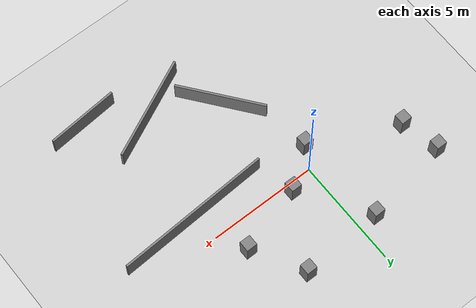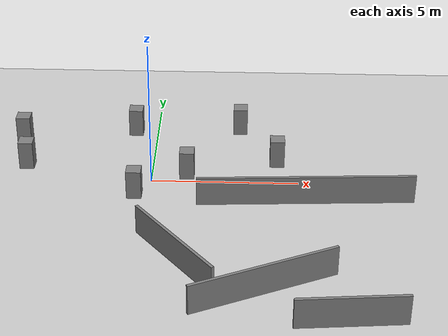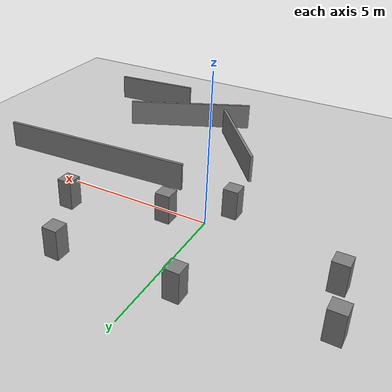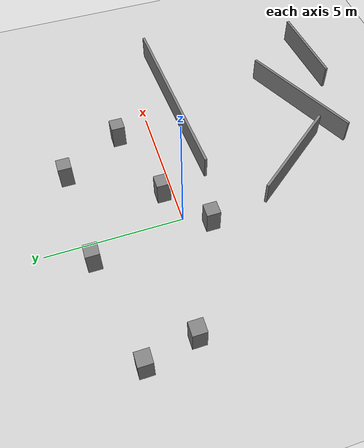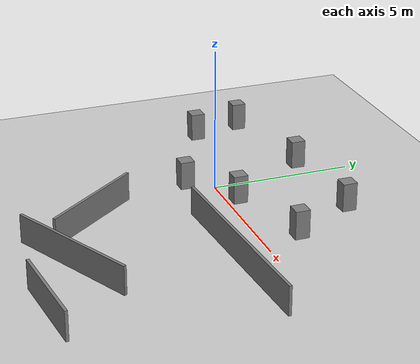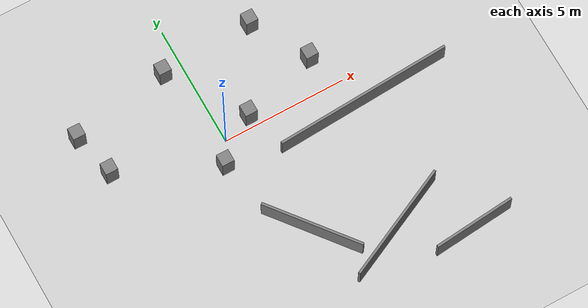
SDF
<?xml version='1.0' encoding='utf-8'?>
<sdf version="1.9">
  <world name="fdgdff">
    <physics name="1ms" type="dart">
      <max_step_size>0.001</max_step_size>
      <real_time_factor>1</real_time_factor>
      <real_time_update_rate>1000</real_time_update_rate>
    </physics>
    <plugin name="gz::sim::systems::Physics" filename="gz-sim-physics-system" />
    <plugin name="gz::sim::systems::UserCommands" filename="gz-sim-user-commands-system" />
    <plugin name="gz::sim::systems::SceneBroadcaster" filename="gz-sim-scene-broadcaster-system" />
    <plugin name="gz::sim::systems::Contact" filename="gz-sim-contact-system" />
    <plugin name="gz::sim::systems::Sensors" filename="gz-sim-sensors-system">
      <render_engine>ogre2</render_engine>
    </plugin>
    <gravity>0 0 -9.8</gravity>
    <magnetic_field>6e-06 2.3e-05 -4.2e-05</magnetic_field>
    <atmosphere type="adiabatic" />
    <scene>
      <ambient>0.4 0.4 0.4 1</ambient>
      <background>0.7 0.7 0.7 1</background>
      <shadows>true</shadows>
    </scene>
    <model name="ground_plane">
      <static>true</static>
      <link name="link">
        <collision name="collision">
          <geometry>
            <plane>
              <normal>0 0 1</normal>
              <size>100 100</size>
            </plane>
          </geometry>
          <surface>
            <friction>
              <ode />
            </friction>
            <bounce />
            <contact />
          </surface>
        </collision>
        <visual name="visual">
          <geometry>
            <plane>
              <normal>0 0 1</normal>
              <size>100 100</size>
            </plane>
          </geometry>
          <material>
            <ambient>0.8 0.8 0.8 1</ambient>
            <diffuse>0.8 0.8 0.8 1</diffuse>
            <specular>0.8 0.8 0.8 1</specular>
          </material>
        </visual>
        <pose>0 0 0 0 -0 0</pose>
        <inertial>
          <pose>0 0 0 0 -0 0</pose>
          <mass>1</mass>
          <inertia>
            <ixx>1</ixx>
            <ixy>0</ixy>
            <ixz>0</ixz>
            <iyy>1</iyy>
            <iyz>0</iyz>
            <izz>1</izz>
          </inertia>
        </inertial>
        <enable_wind>false</enable_wind>
      </link>
      <pose>0 0 0 0 -0 0</pose>
      <self_collide>false</self_collide>
    </model>
    <light name="sun" type="directional">
      <pose>0 0 10 0 -0 0</pose>
      <cast_shadows>true</cast_shadows>
      <intensity>1</intensity>
      <direction>-0.5 0.1 -0.9</direction>
      <diffuse>0.8 0.8 0.8 1</diffuse>
      <specular>0.2 0.2 0.2 1</specular>
      <attenuation>
        <range>1000</range>
        <linear>0.01</linear>
        <constant>0.90000000000000002</constant>
        <quadratic>0.001</quadratic>
      </attenuation>
      <spot>
        <inner_angle>0</inner_angle>
        <outer_angle>0</outer_angle>
        <falloff>0</falloff>
      </spot>
    </light>
  <model name="wall_1">
            <static>true</static>
            <type>wall</type>
            <pose>5.200000 -1.200000 0.500000 0 0 0.055499</pose>
            <link name="link">
                <collision name="collision">
                    <geometry><box><size>7.211103 0.100000 1.000000</size></box></geometry>
                </collision>
                <visual name="visual">
                    <geometry><box><size>7.211103 0.100000 1.000000</size></box></geometry>
                    <material>
                        <diffuse>0.5 0.5 0.5 1</diffuse>
                    </material>
                </visual></link></model><model name="wall_2">
            <static>true</static>
            <type>wall</type>
            <pose>3.800000 -6.150000 0.500000 0 0 -2.696292</pose>
            <link name="link">
                <collision name="collision">
                    <geometry><box><size>4.875449 0.100000 1.000000</size></box></geometry>
                </collision>
                <visual name="visual">
                    <geometry><box><size>4.875449 0.100000 1.000000</size></box></geometry>
                    <material>
                        <diffuse>0.5 0.5 0.5 1</diffuse>
                    </material>
                </visual></link></model><model name="wall_3">
            <static>true</static>
            <type>wall</type>
            <pose>1.050000 -4.700000 0.500000 0 0 2.233999</pose>
            <link name="link">
                <collision name="collision">
                    <geometry><box><size>4.060788 0.100000 1.000000</size></box></geometry>
                </collision>
                <visual name="visual">
                    <geometry><box><size>4.060788 0.100000 1.000000</size></box></geometry>
                    <material>
                        <diffuse>0.5 0.5 0.5 1</diffuse>
                    </material>
                </visual></link></model><model name="wall_4">
            <static>true</static>
            <type>wall</type>
            <pose>6.250000 -7.550000 0.500000 0 0 -3.050933</pose>
            <link name="link">
                <collision name="collision">
                    <geometry><box><size>3.313608 0.100000 1.000000</size></box></geometry>
                </collision>
                <visual name="visual">
                    <geometry><box><size>3.313608 0.100000 1.000000</size></box></geometry>
                    <material>
                        <diffuse>0.5 0.5 0.5 1</diffuse>
                    </material>
                </visual></link></model><model name="box_3">
            <static>true</static>
            <type>box</type>
            <pose>4.300000 1.300000 0.500000 0 0 0</pose>
            <link name="link">
                <collision name="collision">
                    <geometry><box><size>0.500000 0.500000 1.000000</size></box></geometry>
                </collision>
                <visual name="visual">
                    <geometry><box><size>0.500000 0.500000 1.000000</size></box></geometry>
                    <material>
                        <diffuse>0.5 0.5 0.5 1</diffuse>
                    </material>
                </visual></link></model><model name="box_1">
            <static>true</static>
            <type>box</type>
            <pose>-4.800000 2.700000 0.500000 0 0 0</pose>
            <link name="link">
                <collision name="collision">
                    <geometry><box><size>0.500000 0.500000 1.000000</size></box></geometry>
                </collision>
                <visual name="visual">
                    <geometry><box><size>0.500000 0.500000 1.000000</size></box></geometry>
                    <material>
                        <diffuse>0.5 0.5 0.5 1</diffuse>
                    </material>
                </visual></link></model><model name="box_2">
            <static>true</static>
            <type>box</type>
            <pose>-0.800000 3.400000 0.500000 0 0 0</pose>
            <link name="link">
                <collision name="collision">
                    <geometry><box><size>0.500000 0.500000 1.000000</size></box></geometry>
                </collision>
                <visual name="visual">
                    <geometry><box><size>0.500000 0.500000 1.000000</size></box></geometry>
                    <material>
                        <diffuse>0.5 0.5 0.5 1</diffuse>
                    </material>
                </visual></link></model><model name="box_4">
            <static>true</static>
            <type>box</type>
            <pose>1.200000 0.400000 0.500000 0 0 0</pose>
            <link name="link">
                <collision name="collision">
                    <geometry><box><size>0.500000 0.500000 1.000000</size></box></geometry>
                </collision>
                <visual name="visual">
                    <geometry><box><size>0.500000 0.500000 1.000000</size></box></geometry>
                    <material>
                        <diffuse>0.5 0.5 0.5 1</diffuse>
                    </material>
                </visual></link></model><model name="box_5">
            <static>true</static>
            <type>box</type>
            <pose>-0.500000 -0.900000 0.500000 0 0 0</pose>
            <link name="link">
                <collision name="collision">
                    <geometry><box><size>0.500000 0.500000 1.000000</size></box></geometry>
                </collision>
                <visual name="visual">
                    <geometry><box><size>0.500000 0.500000 1.000000</size></box></geometry>
                    <material>
                        <diffuse>0.5 0.5 0.5 1</diffuse>
                    </material>
                </visual></link></model><model name="box_6">
            <static>true</static>
            <type>box</type>
            <pose>3.000000 3.600000 0.500000 0 0 0</pose>
            <link name="link">
                <collision name="collision">
                    <geometry><box><size>0.500000 0.500000 1.000000</size></box></geometry>
                </collision>
                <visual name="visual">
                    <geometry><box><size>0.500000 0.500000 1.000000</size></box></geometry>
                    <material>
                        <diffuse>0.5 0.5 0.5 1</diffuse>
                    </material>
                </visual></link></model><model name="box_7">
            <static>true</static>
            <type>box</type>
            <pose>-4.400000 0.900000 0.500000 0 0 0</pose>
            <link name="link">
                <collision name="collision">
                    <geometry><box><size>0.500000 0.500000 1.000000</size></box></geometry>
                </collision>
                <visual name="visual">
                    <geometry><box><size>0.500000 0.500000 1.000000</size></box></geometry>
                    <material>
                        <diffuse>0.5 0.5 0.5 1</diffuse>
                    </material>
                </visual></link></model></world>
</sdf>
